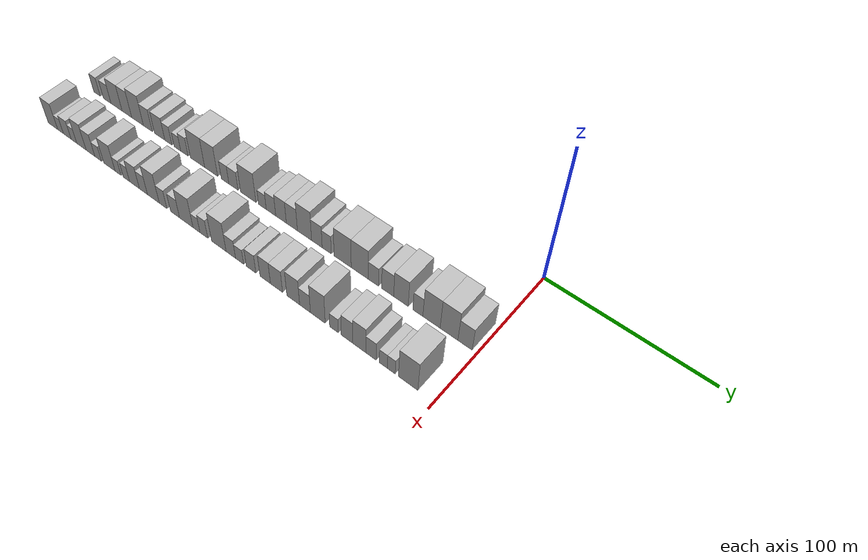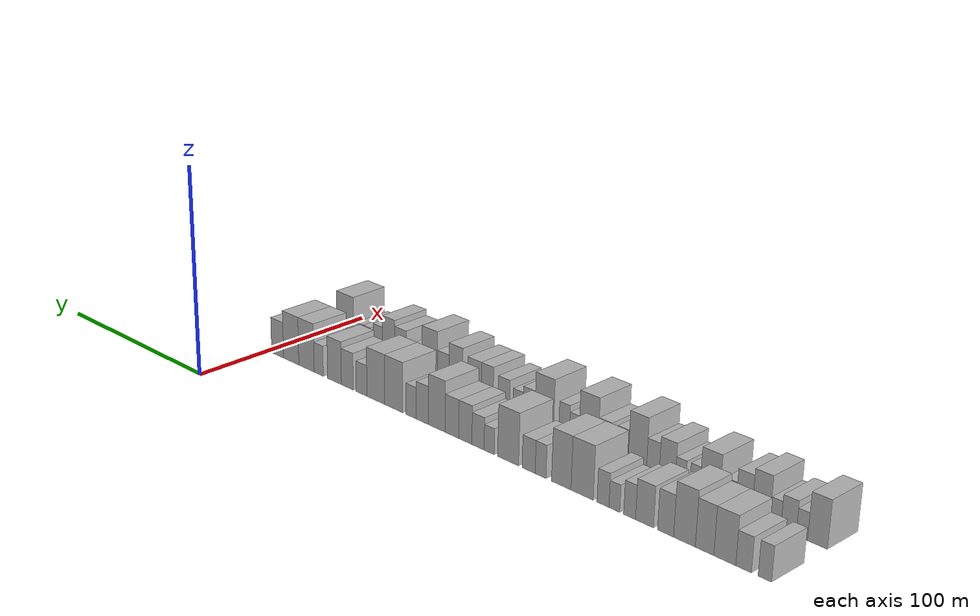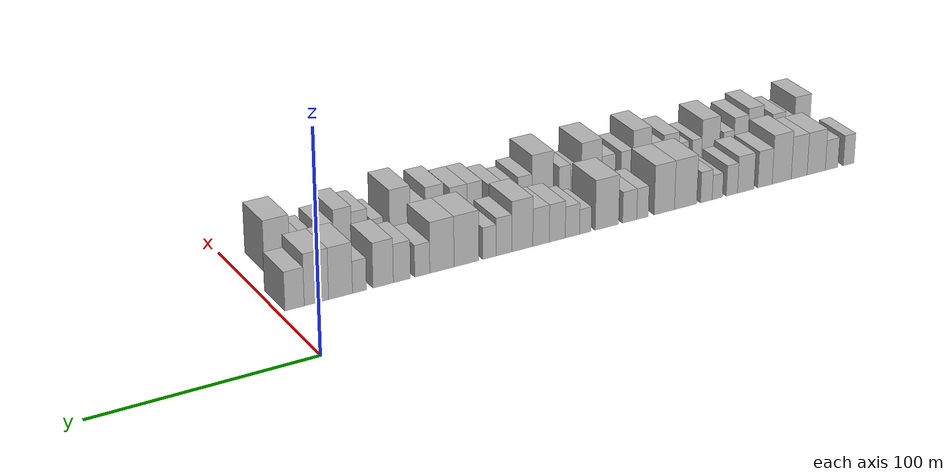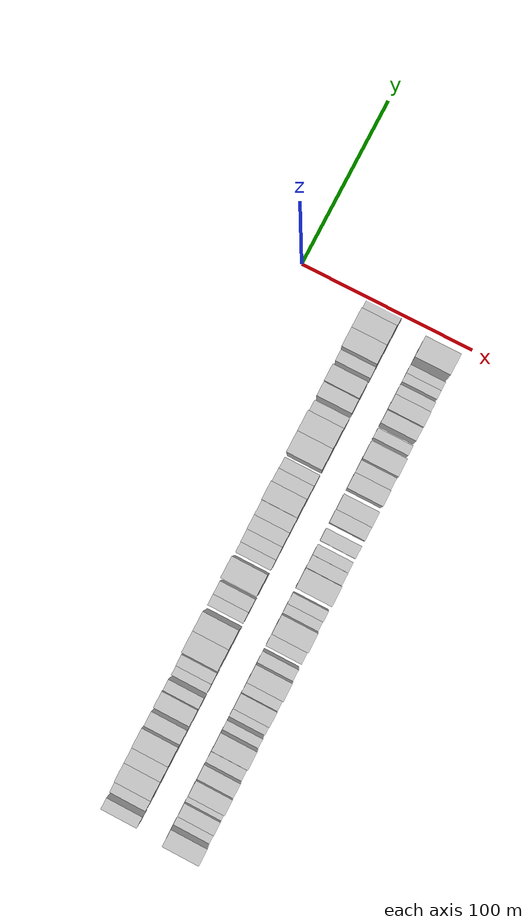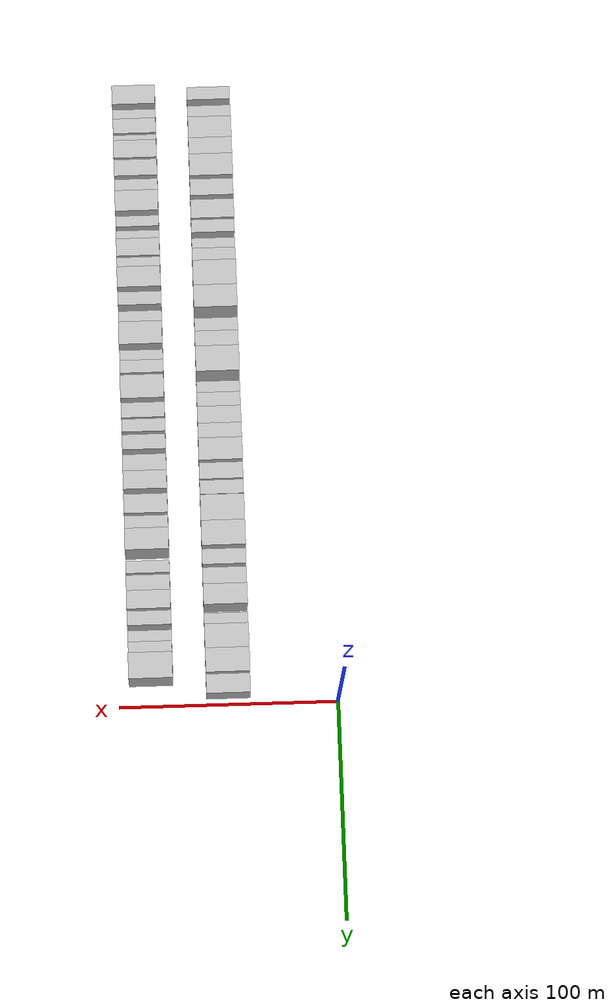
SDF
<sdf version="1.6">
 <world name="default">
  <model name="building_1">
   <static>1</static>
   <pose>50.0000 -286.9867 0 0.000000 0.000000 0.000000</pose>
   <link name="link">
    <pose>0 0 7.50 0 0 0</pose>
    <collision name="collision"><geometry><box><size>20.0000 6.0265 15.0000</size></box></geometry></collision>
    <visual name="visual">
     <cast_shadows>0</cast_shadows>
     <geometry><box><size>20.0000 6.0265 15.0000</size></box></geometry>
     <material>
      <script>
       <uri>model://HANNAS_wall/materials/scripts</uri>
       <uri>model://HANNAS_wall/materials/textures</uri>
       <name>vrc/HANNAS_wall</name>
      </script>
     </material>
    </visual>
   </link>
  </model>
  <model name="building_2">
   <static>1</static>
   <pose>50.0000 -277.4261 0 0.000000 0.000000 0.000000</pose>
   <link name="link">
    <pose>0 0 7.50 0 0 0</pose>
    <collision name="collision"><geometry><box><size>20.0000 7.0948 15.0000</size></box></geometry></collision>
    <visual name="visual">
     <cast_shadows>0</cast_shadows>
     <geometry><box><size>20.0000 7.0948 15.0000</size></box></geometry>
     <material>
      <script>
       <uri>model://HANNAS_wall/materials/scripts</uri>
       <uri>model://HANNAS_wall/materials/textures</uri>
       <name>vrc/HANNAS_wall</name>
      </script>
     </material>
    </visual>
   </link>
  </model>
  <model name="building_3">
   <static>1</static>
   <pose>50.0000 -268.8254 0 0.000000 0.000000 0.000000</pose>
   <link name="link">
    <pose>0 0 10.50 0 0 0</pose>
    <collision name="collision"><geometry><box><size>20.0000 10.1066 21.0000</size></box></geometry></collision>
    <visual name="visual">
     <cast_shadows>0</cast_shadows>
     <geometry><box><size>20.0000 10.1066 21.0000</size></box></geometry>
     <material>
      <script>
       <uri>model://HANNAS_wall/materials/scripts</uri>
       <uri>model://HANNAS_wall/materials/textures</uri>
       <name>vrc/HANNAS_wall</name>
      </script>
     </material>
    </visual>
   </link>
  </model>
  <model name="building_4">
   <static>1</static>
   <pose>50.0000 -259.3988 0 0.000000 0.000000 0.000000</pose>
   <link name="link">
    <pose>0 0 10.50 0 0 0</pose>
    <collision name="collision"><geometry><box><size>20.0000 8.7465 21.0000</size></box></geometry></collision>
    <visual name="visual">
     <cast_shadows>0</cast_shadows>
     <geometry><box><size>20.0000 8.7465 21.0000</size></box></geometry>
     <material>
      <script>
       <uri>model://HANNAS_wall/materials/scripts</uri>
       <uri>model://HANNAS_wall/materials/textures</uri>
       <name>vrc/HANNAS_wall</name>
      </script>
     </material>
    </visual>
   </link>
  </model>
  <model name="building_5">
   <static>1</static>
   <pose>50.0000 -249.8142 0 0.000000 0.000000 0.000000</pose>
   <link name="link">
    <pose>0 0 12.00 0 0 0</pose>
    <collision name="collision"><geometry><box><size>20.0000 10.4228 24.0000</size></box></geometry></collision>
    <visual name="visual">
     <cast_shadows>0</cast_shadows>
     <geometry><box><size>20.0000 10.4228 24.0000</size></box></geometry>
     <material>
      <script>
       <uri>model://HANNAS_wall/materials/scripts</uri>
       <uri>model://HANNAS_wall/materials/textures</uri>
       <name>vrc/HANNAS_wall</name>
      </script>
     </material>
    </visual>
   </link>
  </model>
  <model name="building_6">
   <static>1</static>
   <pose>50.0000 -240.6786 0 0.000000 0.000000 0.000000</pose>
   <link name="link">
    <pose>0 0 9.00 0 0 0</pose>
    <collision name="collision"><geometry><box><size>20.0000 7.8482 18.0000</size></box></geometry></collision>
    <visual name="visual">
     <cast_shadows>0</cast_shadows>
     <geometry><box><size>20.0000 7.8482 18.0000</size></box></geometry>
     <material>
      <script>
       <uri>model://HANNAS_wall/materials/scripts</uri>
       <uri>model://HANNAS_wall/materials/textures</uri>
       <name>vrc/HANNAS_wall</name>
      </script>
     </material>
    </visual>
   </link>
  </model>
  <model name="building_7">
   <static>1</static>
   <pose>50.0000 -230.2864 0 0.000000 0.000000 0.000000</pose>
   <link name="link">
    <pose>0 0 9.00 0 0 0</pose>
    <collision name="collision"><geometry><box><size>20.0000 8.9361 18.0000</size></box></geometry></collision>
    <visual name="visual">
     <cast_shadows>0</cast_shadows>
     <geometry><box><size>20.0000 8.9361 18.0000</size></box></geometry>
     <material>
      <script>
       <uri>model://HANNAS_wall/materials/scripts</uri>
       <uri>model://HANNAS_wall/materials/textures</uri>
       <name>vrc/HANNAS_wall</name>
      </script>
     </material>
    </visual>
   </link>
  </model>
  <model name="building_8">
   <static>1</static>
   <pose>50.0000 -222.8066 0 0.000000 0.000000 0.000000</pose>
   <link name="link">
    <pose>0 0 7.50 0 0 0</pose>
    <collision name="collision"><geometry><box><size>20.0000 6.0235 15.0000</size></box></geometry></collision>
    <visual name="visual">
     <cast_shadows>0</cast_shadows>
     <geometry><box><size>20.0000 6.0235 15.0000</size></box></geometry>
     <material>
      <script>
       <uri>model://HANNAS_wall/materials/scripts</uri>
       <uri>model://HANNAS_wall/materials/textures</uri>
       <name>vrc/HANNAS_wall</name>
      </script>
     </material>
    </visual>
   </link>
  </model>
  <model name="building_9">
   <static>1</static>
   <pose>50.0000 -215.0221 0 0.000000 0.000000 0.000000</pose>
   <link name="link">
    <pose>0 0 6.00 0 0 0</pose>
    <collision name="collision"><geometry><box><size>20.0000 5.5455 12.0000</size></box></geometry></collision>
    <visual name="visual">
     <cast_shadows>0</cast_shadows>
     <geometry><box><size>20.0000 5.5455 12.0000</size></box></geometry>
     <material>
      <script>
       <uri>model://HANNAS_wall/materials/scripts</uri>
       <uri>model://HANNAS_wall/materials/textures</uri>
       <name>vrc/HANNAS_wall</name>
      </script>
     </material>
    </visual>
   </link>
  </model>
  <model name="building_10">
   <static>1</static>
   <pose>50.0000 -209.1622 0 0.000000 0.000000 0.000000</pose>
   <link name="link">
    <pose>0 0 7.50 0 0 0</pose>
    <collision name="collision"><geometry><box><size>20.0000 6.1743 15.0000</size></box></geometry></collision>
    <visual name="visual">
     <cast_shadows>0</cast_shadows>
     <geometry><box><size>20.0000 6.1743 15.0000</size></box></geometry>
     <material>
      <script>
       <uri>model://HANNAS_wall/materials/scripts</uri>
       <uri>model://HANNAS_wall/materials/textures</uri>
       <name>vrc/HANNAS_wall</name>
      </script>
     </material>
    </visual>
   </link>
  </model>
  <model name="building_11">
   <static>1</static>
   <pose>50.0000 -198.1938 0 0.000000 0.000000 0.000000</pose>
   <link name="link">
    <pose>0 0 12.00 0 0 0</pose>
    <collision name="collision"><geometry><box><size>20.0000 11.7625 24.0000</size></box></geometry></collision>
    <visual name="visual">
     <cast_shadows>0</cast_shadows>
     <geometry><box><size>20.0000 11.7625 24.0000</size></box></geometry>
     <material>
      <script>
       <uri>model://HANNAS_wall/materials/scripts</uri>
       <uri>model://HANNAS_wall/materials/textures</uri>
       <name>vrc/HANNAS_wall</name>
      </script>
     </material>
    </visual>
   </link>
  </model>
  <model name="building_12">
   <static>1</static>
   <pose>50.0000 -187.0191 0 0.000000 0.000000 0.000000</pose>
   <link name="link">
    <pose>0 0 12.00 0 0 0</pose>
    <collision name="collision"><geometry><box><size>20.0000 10.5870 24.0000</size></box></geometry></collision>
    <visual name="visual">
     <cast_shadows>0</cast_shadows>
     <geometry><box><size>20.0000 10.5870 24.0000</size></box></geometry>
     <material>
      <script>
       <uri>model://HANNAS_wall/materials/scripts</uri>
       <uri>model://HANNAS_wall/materials/textures</uri>
       <name>vrc/HANNAS_wall</name>
      </script>
     </material>
    </visual>
   </link>
  </model>
  <model name="building_13">
   <static>1</static>
   <pose>50.0000 -175.7036 0 0.000000 0.000000 0.000000</pose>
   <link name="link">
    <pose>0 0 7.50 0 0 0</pose>
    <collision name="collision"><geometry><box><size>20.0000 6.0440 15.0000</size></box></geometry></collision>
    <visual name="visual">
     <cast_shadows>0</cast_shadows>
     <geometry><box><size>20.0000 6.0440 15.0000</size></box></geometry>
     <material>
      <script>
       <uri>model://HANNAS_wall/materials/scripts</uri>
       <uri>model://HANNAS_wall/materials/textures</uri>
       <name>vrc/HANNAS_wall</name>
      </script>
     </material>
    </visual>
   </link>
  </model>
  <model name="building_14">
   <static>1</static>
   <pose>50.0000 -169.0348 0 0.000000 0.000000 0.000000</pose>
   <link name="link">
    <pose>0 0 7.50 0 0 0</pose>
    <collision name="collision"><geometry><box><size>20.0000 7.2937 15.0000</size></box></geometry></collision>
    <visual name="visual">
     <cast_shadows>0</cast_shadows>
     <geometry><box><size>20.0000 7.2937 15.0000</size></box></geometry>
     <material>
      <script>
       <uri>model://HANNAS_wall/materials/scripts</uri>
       <uri>model://HANNAS_wall/materials/textures</uri>
       <name>vrc/HANNAS_wall</name>
      </script>
     </material>
    </visual>
   </link>
  </model>
  <model name="building_15">
   <static>1</static>
   <pose>50.0000 -157.3991 0 0.000000 0.000000 0.000000</pose>
   <link name="link">
    <pose>0 0 12.00 0 0 0</pose>
    <collision name="collision"><geometry><box><size>20.0000 11.9776 24.0000</size></box></geometry></collision>
    <visual name="visual">
     <cast_shadows>0</cast_shadows>
     <geometry><box><size>20.0000 11.9776 24.0000</size></box></geometry>
     <material>
      <script>
       <uri>model://HANNAS_wall/materials/scripts</uri>
       <uri>model://HANNAS_wall/materials/textures</uri>
       <name>vrc/HANNAS_wall</name>
      </script>
     </material>
    </visual>
   </link>
  </model>
  <model name="building_16">
   <static>1</static>
   <pose>50.0000 -146.4578 0 0.000000 0.000000 0.000000</pose>
   <link name="link">
    <pose>0 0 6.00 0 0 0</pose>
    <collision name="collision"><geometry><box><size>20.0000 5.9051 12.0000</size></box></geometry></collision>
    <visual name="visual">
     <cast_shadows>0</cast_shadows>
     <geometry><box><size>20.0000 5.9051 12.0000</size></box></geometry>
     <material>
      <script>
       <uri>model://HANNAS_wall/materials/scripts</uri>
       <uri>model://HANNAS_wall/materials/textures</uri>
       <name>vrc/HANNAS_wall</name>
      </script>
     </material>
    </visual>
   </link>
  </model>
  <model name="building_17">
   <static>1</static>
   <pose>50.0000 -139.8941 0 0.000000 0.000000 0.000000</pose>
   <link name="link">
    <pose>0 0 7.50 0 0 0</pose>
    <collision name="collision"><geometry><box><size>20.0000 7.2222 15.0000</size></box></geometry></collision>
    <visual name="visual">
     <cast_shadows>0</cast_shadows>
     <geometry><box><size>20.0000 7.2222 15.0000</size></box></geometry>
     <material>
      <script>
       <uri>model://HANNAS_wall/materials/scripts</uri>
       <uri>model://HANNAS_wall/materials/textures</uri>
       <name>vrc/HANNAS_wall</name>
      </script>
     </material>
    </visual>
   </link>
  </model>
  <model name="building_18">
   <static>1</static>
   <pose>50.0000 -132.3141 0 0.000000 0.000000 0.000000</pose>
   <link name="link">
    <pose>0 0 9.00 0 0 0</pose>
    <collision name="collision"><geometry><box><size>20.0000 7.9379 18.0000</size></box></geometry></collision>
    <visual name="visual">
     <cast_shadows>0</cast_shadows>
     <geometry><box><size>20.0000 7.9379 18.0000</size></box></geometry>
     <material>
      <script>
       <uri>model://HANNAS_wall/materials/scripts</uri>
       <uri>model://HANNAS_wall/materials/textures</uri>
       <name>vrc/HANNAS_wall</name>
      </script>
     </material>
    </visual>
   </link>
  </model>
  <model name="building_19">
   <static>1</static>
   <pose>50.0000 -124.2348 0 0.000000 0.000000 0.000000</pose>
   <link name="link">
    <pose>0 0 9.00 0 0 0</pose>
    <collision name="collision"><geometry><box><size>20.0000 8.2207 18.0000</size></box></geometry></collision>
    <visual name="visual">
     <cast_shadows>0</cast_shadows>
     <geometry><box><size>20.0000 8.2207 18.0000</size></box></geometry>
     <material>
      <script>
       <uri>model://HANNAS_wall/materials/scripts</uri>
       <uri>model://HANNAS_wall/materials/textures</uri>
       <name>vrc/HANNAS_wall</name>
      </script>
     </material>
    </visual>
   </link>
  </model>
  <model name="building_20">
   <static>1</static>
   <pose>50.0000 -114.9453 0 0.000000 0.000000 0.000000</pose>
   <link name="link">
    <pose>0 0 12.00 0 0 0</pose>
    <collision name="collision"><geometry><box><size>20.0000 10.3582 24.0000</size></box></geometry></collision>
    <visual name="visual">
     <cast_shadows>0</cast_shadows>
     <geometry><box><size>20.0000 10.3582 24.0000</size></box></geometry>
     <material>
      <script>
       <uri>model://HANNAS_wall/materials/scripts</uri>
       <uri>model://HANNAS_wall/materials/textures</uri>
       <name>vrc/HANNAS_wall</name>
      </script>
     </material>
    </visual>
   </link>
  </model>
  <model name="building_21">
   <static>1</static>
   <pose>50.0000 -105.9555 0 0.000000 0.000000 0.000000</pose>
   <link name="link">
    <pose>0 0 9.00 0 0 0</pose>
    <collision name="collision"><geometry><box><size>20.0000 7.6214 18.0000</size></box></geometry></collision>
    <visual name="visual">
     <cast_shadows>0</cast_shadows>
     <geometry><box><size>20.0000 7.6214 18.0000</size></box></geometry>
     <material>
      <script>
       <uri>model://HANNAS_wall/materials/scripts</uri>
       <uri>model://HANNAS_wall/materials/textures</uri>
       <name>vrc/HANNAS_wall</name>
      </script>
     </material>
    </visual>
   </link>
  </model>
  <model name="building_22">
   <static>1</static>
   <pose>50.0000 -98.8913 0 0.000000 0.000000 0.000000</pose>
   <link name="link">
    <pose>0 0 7.50 0 0 0</pose>
    <collision name="collision"><geometry><box><size>20.0000 6.5070 15.0000</size></box></geometry></collision>
    <visual name="visual">
     <cast_shadows>0</cast_shadows>
     <geometry><box><size>20.0000 6.5070 15.0000</size></box></geometry>
     <material>
      <script>
       <uri>model://HANNAS_wall/materials/scripts</uri>
       <uri>model://HANNAS_wall/materials/textures</uri>
       <name>vrc/HANNAS_wall</name>
      </script>
     </material>
    </visual>
   </link>
  </model>
  <model name="building_23">
   <static>1</static>
   <pose>50.0000 -87.6615 0 0.000000 0.000000 0.000000</pose>
   <link name="link">
    <pose>0 0 12.00 0 0 0</pose>
    <collision name="collision"><geometry><box><size>20.0000 11.9526 24.0000</size></box></geometry></collision>
    <visual name="visual">
     <cast_shadows>0</cast_shadows>
     <geometry><box><size>20.0000 11.9526 24.0000</size></box></geometry>
     <material>
      <script>
       <uri>model://HANNAS_wall/materials/scripts</uri>
       <uri>model://HANNAS_wall/materials/textures</uri>
       <name>vrc/HANNAS_wall</name>
      </script>
     </material>
    </visual>
   </link>
  </model>
  <model name="building_24">
   <static>1</static>
   <pose>50.0000 -75.9016 0 0.000000 0.000000 0.000000</pose>
   <link name="link">
    <pose>0 0 12.00 0 0 0</pose>
    <collision name="collision"><geometry><box><size>20.0000 11.5673 24.0000</size></box></geometry></collision>
    <visual name="visual">
     <cast_shadows>0</cast_shadows>
     <geometry><box><size>20.0000 11.5673 24.0000</size></box></geometry>
     <material>
      <script>
       <uri>model://HANNAS_wall/materials/scripts</uri>
       <uri>model://HANNAS_wall/materials/textures</uri>
       <name>vrc/HANNAS_wall</name>
      </script>
     </material>
    </visual>
   </link>
  </model>
  <model name="building_25">
   <static>1</static>
   <pose>50.0000 -66.5488 0 0.000000 0.000000 0.000000</pose>
   <link name="link">
    <pose>0 0 7.50 0 0 0</pose>
    <collision name="collision"><geometry><box><size>20.0000 7.1383 15.0000</size></box></geometry></collision>
    <visual name="visual">
     <cast_shadows>0</cast_shadows>
     <geometry><box><size>20.0000 7.1383 15.0000</size></box></geometry>
     <material>
      <script>
       <uri>model://HANNAS_wall/materials/scripts</uri>
       <uri>model://HANNAS_wall/materials/textures</uri>
       <name>vrc/HANNAS_wall</name>
      </script>
     </material>
    </visual>
   </link>
  </model>
  <model name="building_26">
   <static>1</static>
   <pose>50.0000 -56.9321 0 0.000000 0.000000 0.000000</pose>
   <link name="link">
    <pose>0 0 9.00 0 0 0</pose>
    <collision name="collision"><geometry><box><size>20.0000 8.0951 18.0000</size></box></geometry></collision>
    <visual name="visual">
     <cast_shadows>0</cast_shadows>
     <geometry><box><size>20.0000 8.0951 18.0000</size></box></geometry>
     <material>
      <script>
       <uri>model://HANNAS_wall/materials/scripts</uri>
       <uri>model://HANNAS_wall/materials/textures</uri>
       <name>vrc/HANNAS_wall</name>
      </script>
     </material>
    </visual>
   </link>
  </model>
  <model name="building_27">
   <static>1</static>
   <pose>50.0000 -48.1220 0 0.000000 0.000000 0.000000</pose>
   <link name="link">
    <pose>0 0 10.50 0 0 0</pose>
    <collision name="collision"><geometry><box><size>20.0000 9.5251 21.0000</size></box></geometry></collision>
    <visual name="visual">
     <cast_shadows>0</cast_shadows>
     <geometry><box><size>20.0000 9.5251 21.0000</size></box></geometry>
     <material>
      <script>
       <uri>model://HANNAS_wall/materials/scripts</uri>
       <uri>model://HANNAS_wall/materials/textures</uri>
       <name>vrc/HANNAS_wall</name>
      </script>
     </material>
    </visual>
   </link>
  </model>
  <model name="building_28">
   <static>1</static>
   <pose>50.0000 -37.1234 0 0.000000 0.000000 0.000000</pose>
   <link name="link">
    <pose>0 0 7.50 0 0 0</pose>
    <collision name="collision"><geometry><box><size>20.0000 6.4721 15.0000</size></box></geometry></collision>
    <visual name="visual">
     <cast_shadows>0</cast_shadows>
     <geometry><box><size>20.0000 6.4721 15.0000</size></box></geometry>
     <material>
      <script>
       <uri>model://HANNAS_wall/materials/scripts</uri>
       <uri>model://HANNAS_wall/materials/textures</uri>
       <name>vrc/HANNAS_wall</name>
      </script>
     </material>
    </visual>
   </link>
  </model>
  <model name="building_29">
   <static>1</static>
   <pose>50.0000 -28.4028 0 0.000000 0.000000 0.000000</pose>
   <link name="link">
    <pose>0 0 12.00 0 0 0</pose>
    <collision name="collision"><geometry><box><size>20.0000 10.9692 24.0000</size></box></geometry></collision>
    <visual name="visual">
     <cast_shadows>0</cast_shadows>
     <geometry><box><size>20.0000 10.9692 24.0000</size></box></geometry>
     <material>
      <script>
       <uri>model://HANNAS_wall/materials/scripts</uri>
       <uri>model://HANNAS_wall/materials/textures</uri>
       <name>vrc/HANNAS_wall</name>
      </script>
     </material>
    </visual>
   </link>
  </model>
  <model name="building_30">
   <static>1</static>
   <pose>50.0000 -17.3656 0 0.000000 0.000000 0.000000</pose>
   <link name="link">
    <pose>0 0 12.00 0 0 0</pose>
    <collision name="collision"><geometry><box><size>20.0000 11.1053 24.0000</size></box></geometry></collision>
    <visual name="visual">
     <cast_shadows>0</cast_shadows>
     <geometry><box><size>20.0000 11.1053 24.0000</size></box></geometry>
     <material>
      <script>
       <uri>model://HANNAS_wall/materials/scripts</uri>
       <uri>model://HANNAS_wall/materials/textures</uri>
       <name>vrc/HANNAS_wall</name>
      </script>
     </material>
    </visual>
   </link>
  </model>
  <model name="building_31">
   <static>1</static>
   <pose>50.0000 -7.4308 0 0.000000 0.000000 0.000000</pose>
   <link name="link">
    <pose>0 0 9.00 0 0 0</pose>
    <collision name="collision"><geometry><box><size>20.0000 8.7644 18.0000</size></box></geometry></collision>
    <visual name="visual">
     <cast_shadows>0</cast_shadows>
     <geometry><box><size>20.0000 8.7644 18.0000</size></box></geometry>
     <material>
      <script>
       <uri>model://HANNAS_wall/materials/scripts</uri>
       <uri>model://HANNAS_wall/materials/textures</uri>
       <name>vrc/HANNAS_wall</name>
      </script>
     </material>
    </visual>
   </link>
  </model>
  <model name="building_63">
   <static>1</static>
   <pose>85.0000 -285.5057 0 0.000000 0.000000 0.000000</pose>
   <link name="link">
    <pose>0 0 10.50 0 0 0</pose>
    <collision name="collision"><geometry><box><size>20.0000 8.9887 21.0000</size></box></geometry></collision>
    <visual name="visual">
     <cast_shadows>0</cast_shadows>
     <geometry><box><size>20.0000 8.9887 21.0000</size></box></geometry>
     <material>
      <script>
       <uri>model://HANNAS_wall/materials/scripts</uri>
       <uri>model://HANNAS_wall/materials/textures</uri>
       <name>vrc/HANNAS_wall</name>
      </script>
     </material>
    </visual>
   </link>
  </model>
  <model name="building_64">
   <static>1</static>
   <pose>85.0000 -278.4159 0 0.000000 0.000000 0.000000</pose>
   <link name="link">
    <pose>0 0 6.00 0 0 0</pose>
    <collision name="collision"><geometry><box><size>20.0000 5.1909 12.0000</size></box></geometry></collision>
    <visual name="visual">
     <cast_shadows>0</cast_shadows>
     <geometry><box><size>20.0000 5.1909 12.0000</size></box></geometry>
     <material>
      <script>
       <uri>model://HANNAS_wall/materials/scripts</uri>
       <uri>model://HANNAS_wall/materials/textures</uri>
       <name>vrc/HANNAS_wall</name>
      </script>
     </material>
    </visual>
   </link>
  </model>
  <model name="building_65">
   <static>1</static>
   <pose>85.0000 -272.2517 0 0.000000 0.000000 0.000000</pose>
   <link name="link">
    <pose>0 0 7.50 0 0 0</pose>
    <collision name="collision"><geometry><box><size>20.0000 7.1376 15.0000</size></box></geometry></collision>
    <visual name="visual">
     <cast_shadows>0</cast_shadows>
     <geometry><box><size>20.0000 7.1376 15.0000</size></box></geometry>
     <material>
      <script>
       <uri>model://HANNAS_wall/materials/scripts</uri>
       <uri>model://HANNAS_wall/materials/textures</uri>
       <name>vrc/HANNAS_wall</name>
      </script>
     </material>
    </visual>
   </link>
  </model>
  <model name="building_66">
   <static>1</static>
   <pose>85.0000 -266.1053 0 0.000000 0.000000 0.000000</pose>
   <link name="link">
    <pose>0 0 6.00 0 0 0</pose>
    <collision name="collision"><geometry><box><size>20.0000 5.1553 12.0000</size></box></geometry></collision>
    <visual name="visual">
     <cast_shadows>0</cast_shadows>
     <geometry><box><size>20.0000 5.1553 12.0000</size></box></geometry>
     <material>
      <script>
       <uri>model://HANNAS_wall/materials/scripts</uri>
       <uri>model://HANNAS_wall/materials/textures</uri>
       <name>vrc/HANNAS_wall</name>
      </script>
     </material>
    </visual>
   </link>
  </model>
  <model name="building_67">
   <static>1</static>
   <pose>85.0000 -259.2805 0 0.000000 0.000000 0.000000</pose>
   <link name="link">
    <pose>0 0 10.50 0 0 0</pose>
    <collision name="collision"><geometry><box><size>20.0000 8.4942 21.0000</size></box></geometry></collision>
    <visual name="visual">
     <cast_shadows>0</cast_shadows>
     <geometry><box><size>20.0000 8.4942 21.0000</size></box></geometry>
     <material>
      <script>
       <uri>model://HANNAS_wall/materials/scripts</uri>
       <uri>model://HANNAS_wall/materials/textures</uri>
       <name>vrc/HANNAS_wall</name>
      </script>
     </material>
    </visual>
   </link>
  </model>
  <model name="building_68">
   <static>1</static>
   <pose>85.0000 -251.1591 0 0.000000 0.000000 0.000000</pose>
   <link name="link">
    <pose>0 0 9.00 0 0 0</pose>
    <collision name="collision"><geometry><box><size>20.0000 7.7486 18.0000</size></box></geometry></collision>
    <visual name="visual">
     <cast_shadows>0</cast_shadows>
     <geometry><box><size>20.0000 7.7486 18.0000</size></box></geometry>
     <material>
      <script>
       <uri>model://HANNAS_wall/materials/scripts</uri>
       <uri>model://HANNAS_wall/materials/textures</uri>
       <name>vrc/HANNAS_wall</name>
      </script>
     </material>
    </visual>
   </link>
  </model>
  <model name="building_69">
   <static>1</static>
   <pose>85.0000 -244.3405 0 0.000000 0.000000 0.000000</pose>
   <link name="link">
    <pose>0 0 6.00 0 0 0</pose>
    <collision name="collision"><geometry><box><size>20.0000 5.8887 12.0000</size></box></geometry></collision>
    <visual name="visual">
     <cast_shadows>0</cast_shadows>
     <geometry><box><size>20.0000 5.8887 12.0000</size></box></geometry>
     <material>
      <script>
       <uri>model://HANNAS_wall/materials/scripts</uri>
       <uri>model://HANNAS_wall/materials/textures</uri>
       <name>vrc/HANNAS_wall</name>
      </script>
     </material>
    </visual>
   </link>
  </model>
  <model name="building_70">
   <static>1</static>
   <pose>85.0000 -234.4627 0 0.000000 0.000000 0.000000</pose>
   <link name="link">
    <pose>0 0 10.50 0 0 0</pose>
    <collision name="collision"><geometry><box><size>20.0000 9.8668 21.0000</size></box></geometry></collision>
    <visual name="visual">
     <cast_shadows>0</cast_shadows>
     <geometry><box><size>20.0000 9.8668 21.0000</size></box></geometry>
     <material>
      <script>
       <uri>model://HANNAS_wall/materials/scripts</uri>
       <uri>model://HANNAS_wall/materials/textures</uri>
       <name>vrc/HANNAS_wall</name>
      </script>
     </material>
    </visual>
   </link>
  </model>
  <model name="building_71">
   <static>1</static>
   <pose>85.0000 -226.9836 0 0.000000 0.000000 0.000000</pose>
   <link name="link">
    <pose>0 0 6.00 0 0 0</pose>
    <collision name="collision"><geometry><box><size>20.0000 5.0914 12.0000</size></box></geometry></collision>
    <visual name="visual">
     <cast_shadows>0</cast_shadows>
     <geometry><box><size>20.0000 5.0914 12.0000</size></box></geometry>
     <material>
      <script>
       <uri>model://HANNAS_wall/materials/scripts</uri>
       <uri>model://HANNAS_wall/materials/textures</uri>
       <name>vrc/HANNAS_wall</name>
      </script>
     </material>
    </visual>
   </link>
  </model>
  <model name="building_72">
   <static>1</static>
   <pose>85.0000 -219.7766 0 0.000000 0.000000 0.000000</pose>
   <link name="link">
    <pose>0 0 6.00 0 0 0</pose>
    <collision name="collision"><geometry><box><size>20.0000 5.3225 12.0000</size></box></geometry></collision>
    <visual name="visual">
     <cast_shadows>0</cast_shadows>
     <geometry><box><size>20.0000 5.3225 12.0000</size></box></geometry>
     <material>
      <script>
       <uri>model://HANNAS_wall/materials/scripts</uri>
       <uri>model://HANNAS_wall/materials/textures</uri>
       <name>vrc/HANNAS_wall</name>
      </script>
     </material>
    </visual>
   </link>
  </model>
  <model name="building_73">
   <static>1</static>
   <pose>85.0000 -212.9548 0 0.000000 0.000000 0.000000</pose>
   <link name="link">
    <pose>0 0 9.00 0 0 0</pose>
    <collision name="collision"><geometry><box><size>20.0000 8.3210 18.0000</size></box></geometry></collision>
    <visual name="visual">
     <cast_shadows>0</cast_shadows>
     <geometry><box><size>20.0000 8.3210 18.0000</size></box></geometry>
     <material>
      <script>
       <uri>model://HANNAS_wall/materials/scripts</uri>
       <uri>model://HANNAS_wall/materials/textures</uri>
       <name>vrc/HANNAS_wall</name>
      </script>
     </material>
    </visual>
   </link>
  </model>
  <model name="building_74">
   <static>1</static>
   <pose>85.0000 -205.4370 0 0.000000 0.000000 0.000000</pose>
   <link name="link">
    <pose>0 0 7.50 0 0 0</pose>
    <collision name="collision"><geometry><box><size>20.0000 6.7146 15.0000</size></box></geometry></collision>
    <visual name="visual">
     <cast_shadows>0</cast_shadows>
     <geometry><box><size>20.0000 6.7146 15.0000</size></box></geometry>
     <material>
      <script>
       <uri>model://HANNAS_wall/materials/scripts</uri>
       <uri>model://HANNAS_wall/materials/textures</uri>
       <name>vrc/HANNAS_wall</name>
      </script>
     </material>
    </visual>
   </link>
  </model>
  <model name="building_75">
   <static>1</static>
   <pose>85.0000 -197.2140 0 0.000000 0.000000 0.000000</pose>
   <link name="link">
    <pose>0 0 12.00 0 0 0</pose>
    <collision name="collision"><geometry><box><size>20.0000 9.7315 24.0000</size></box></geometry></collision>
    <visual name="visual">
     <cast_shadows>0</cast_shadows>
     <geometry><box><size>20.0000 9.7315 24.0000</size></box></geometry>
     <material>
      <script>
       <uri>model://HANNAS_wall/materials/scripts</uri>
       <uri>model://HANNAS_wall/materials/textures</uri>
       <name>vrc/HANNAS_wall</name>
      </script>
     </material>
    </visual>
   </link>
  </model>
  <model name="building_76">
   <static>1</static>
   <pose>85.0000 -189.2417 0 0.000000 0.000000 0.000000</pose>
   <link name="link">
    <pose>0 0 7.50 0 0 0</pose>
    <collision name="collision"><geometry><box><size>20.0000 6.2130 15.0000</size></box></geometry></collision>
    <visual name="visual">
     <cast_shadows>0</cast_shadows>
     <geometry><box><size>20.0000 6.2130 15.0000</size></box></geometry>
     <material>
      <script>
       <uri>model://HANNAS_wall/materials/scripts</uri>
       <uri>model://HANNAS_wall/materials/textures</uri>
       <name>vrc/HANNAS_wall</name>
      </script>
     </material>
    </visual>
   </link>
  </model>
  <model name="building_77">
   <static>1</static>
   <pose>85.0000 -179.5406 0 0.000000 0.000000 0.000000</pose>
   <link name="link">
    <pose>0 0 7.50 0 0 0</pose>
    <collision name="collision"><geometry><box><size>20.0000 7.1892 15.0000</size></box></geometry></collision>
    <visual name="visual">
     <cast_shadows>0</cast_shadows>
     <geometry><box><size>20.0000 7.1892 15.0000</size></box></geometry>
     <material>
      <script>
       <uri>model://HANNAS_wall/materials/scripts</uri>
       <uri>model://HANNAS_wall/materials/textures</uri>
       <name>vrc/HANNAS_wall</name>
      </script>
     </material>
    </visual>
   </link>
  </model>
  <model name="building_78">
   <static>1</static>
   <pose>85.0000 -170.6063 0 0.000000 0.000000 0.000000</pose>
   <link name="link">
    <pose>0 0 12.00 0 0 0</pose>
    <collision name="collision"><geometry><box><size>20.0000 10.6794 24.0000</size></box></geometry></collision>
    <visual name="visual">
     <cast_shadows>0</cast_shadows>
     <geometry><box><size>20.0000 10.6794 24.0000</size></box></geometry>
     <material>
      <script>
       <uri>model://HANNAS_wall/materials/scripts</uri>
       <uri>model://HANNAS_wall/materials/textures</uri>
       <name>vrc/HANNAS_wall</name>
      </script>
     </material>
    </visual>
   </link>
  </model>
  <model name="building_79">
   <static>1</static>
   <pose>85.0000 -162.5610 0 0.000000 0.000000 0.000000</pose>
   <link name="link">
    <pose>0 0 6.00 0 0 0</pose>
    <collision name="collision"><geometry><box><size>20.0000 5.4112 12.0000</size></box></geometry></collision>
    <visual name="visual">
     <cast_shadows>0</cast_shadows>
     <geometry><box><size>20.0000 5.4112 12.0000</size></box></geometry>
     <material>
      <script>
       <uri>model://HANNAS_wall/materials/scripts</uri>
       <uri>model://HANNAS_wall/materials/textures</uri>
       <name>vrc/HANNAS_wall</name>
      </script>
     </material>
    </visual>
   </link>
  </model>
  <model name="building_80">
   <static>1</static>
   <pose>85.0000 -156.8165 0 0.000000 0.000000 0.000000</pose>
   <link name="link">
    <pose>0 0 7.50 0 0 0</pose>
    <collision name="collision"><geometry><box><size>20.0000 6.0778 15.0000</size></box></geometry></collision>
    <visual name="visual">
     <cast_shadows>0</cast_shadows>
     <geometry><box><size>20.0000 6.0778 15.0000</size></box></geometry>
     <material>
      <script>
       <uri>model://HANNAS_wall/materials/scripts</uri>
       <uri>model://HANNAS_wall/materials/textures</uri>
       <name>vrc/HANNAS_wall</name>
      </script>
     </material>
    </visual>
   </link>
  </model>
  <model name="building_81">
   <static>1</static>
   <pose>85.0000 -145.2712 0 0.000000 0.000000 0.000000</pose>
   <link name="link">
    <pose>0 0 12.00 0 0 0</pose>
    <collision name="collision"><geometry><box><size>20.0000 11.0128 24.0000</size></box></geometry></collision>
    <visual name="visual">
     <cast_shadows>0</cast_shadows>
     <geometry><box><size>20.0000 11.0128 24.0000</size></box></geometry>
     <material>
      <script>
       <uri>model://HANNAS_wall/materials/scripts</uri>
       <uri>model://HANNAS_wall/materials/textures</uri>
       <name>vrc/HANNAS_wall</name>
      </script>
     </material>
    </visual>
   </link>
  </model>
  <model name="building_82">
   <static>1</static>
   <pose>85.0000 -136.2244 0 0.000000 0.000000 0.000000</pose>
   <link name="link">
    <pose>0 0 7.50 0 0 0</pose>
    <collision name="collision"><geometry><box><size>20.0000 7.0808 15.0000</size></box></geometry></collision>
    <visual name="visual">
     <cast_shadows>0</cast_shadows>
     <geometry><box><size>20.0000 7.0808 15.0000</size></box></geometry>
     <material>
      <script>
       <uri>model://HANNAS_wall/materials/scripts</uri>
       <uri>model://HANNAS_wall/materials/textures</uri>
       <name>vrc/HANNAS_wall</name>
      </script>
     </material>
    </visual>
   </link>
  </model>
  <model name="building_83">
   <static>1</static>
   <pose>85.0000 -129.6910 0 0.000000 0.000000 0.000000</pose>
   <link name="link">
    <pose>0 0 6.00 0 0 0</pose>
    <collision name="collision"><geometry><box><size>20.0000 5.9862 12.0000</size></box></geometry></collision>
    <visual name="visual">
     <cast_shadows>0</cast_shadows>
     <geometry><box><size>20.0000 5.9862 12.0000</size></box></geometry>
     <material>
      <script>
       <uri>model://HANNAS_wall/materials/scripts</uri>
       <uri>model://HANNAS_wall/materials/textures</uri>
       <name>vrc/HANNAS_wall</name>
      </script>
     </material>
    </visual>
   </link>
  </model>
  <model name="building_84">
   <static>1</static>
   <pose>85.0000 -121.1847 0 0.000000 0.000000 0.000000</pose>
   <link name="link">
    <pose>0 0 7.50 0 0 0</pose>
    <collision name="collision"><geometry><box><size>20.0000 7.0262 15.0000</size></box></geometry></collision>
    <visual name="visual">
     <cast_shadows>0</cast_shadows>
     <geometry><box><size>20.0000 7.0262 15.0000</size></box></geometry>
     <material>
      <script>
       <uri>model://HANNAS_wall/materials/scripts</uri>
       <uri>model://HANNAS_wall/materials/textures</uri>
       <name>vrc/HANNAS_wall</name>
      </script>
     </material>
    </visual>
   </link>
  </model>
  <model name="building_85">
   <static>1</static>
   <pose>85.0000 -110.9078 0 0.000000 0.000000 0.000000</pose>
   <link name="link">
    <pose>0 0 9.00 0 0 0</pose>
    <collision name="collision"><geometry><box><size>20.0000 7.5277 18.0000</size></box></geometry></collision>
    <visual name="visual">
     <cast_shadows>0</cast_shadows>
     <geometry><box><size>20.0000 7.5277 18.0000</size></box></geometry>
     <material>
      <script>
       <uri>model://HANNAS_wall/materials/scripts</uri>
       <uri>model://HANNAS_wall/materials/textures</uri>
       <name>vrc/HANNAS_wall</name>
      </script>
     </material>
    </visual>
   </link>
  </model>
  <model name="building_86">
   <static>1</static>
   <pose>85.0000 -102.8354 0 0.000000 0.000000 0.000000</pose>
   <link name="link">
    <pose>0 0 9.00 0 0 0</pose>
    <collision name="collision"><geometry><box><size>20.0000 8.6170 18.0000</size></box></geometry></collision>
    <visual name="visual">
     <cast_shadows>0</cast_shadows>
     <geometry><box><size>20.0000 8.6170 18.0000</size></box></geometry>
     <material>
      <script>
       <uri>model://HANNAS_wall/materials/scripts</uri>
       <uri>model://HANNAS_wall/materials/textures</uri>
       <name>vrc/HANNAS_wall</name>
      </script>
     </material>
    </visual>
   </link>
  </model>
  <model name="building_87">
   <static>1</static>
   <pose>85.0000 -91.0759 0 0.000000 0.000000 0.000000</pose>
   <link name="link">
    <pose>0 0 10.50 0 0 0</pose>
    <collision name="collision"><geometry><box><size>20.0000 8.9021 21.0000</size></box></geometry></collision>
    <visual name="visual">
     <cast_shadows>0</cast_shadows>
     <geometry><box><size>20.0000 8.9021 21.0000</size></box></geometry>
     <material>
      <script>
       <uri>model://HANNAS_wall/materials/scripts</uri>
       <uri>model://HANNAS_wall/materials/textures</uri>
       <name>vrc/HANNAS_wall</name>
      </script>
     </material>
    </visual>
   </link>
  </model>
  <model name="building_88">
   <static>1</static>
   <pose>85.0000 -82.8972 0 0.000000 0.000000 0.000000</pose>
   <link name="link">
    <pose>0 0 7.50 0 0 0</pose>
    <collision name="collision"><geometry><box><size>20.0000 7.4553 15.0000</size></box></geometry></collision>
    <visual name="visual">
     <cast_shadows>0</cast_shadows>
     <geometry><box><size>20.0000 7.4553 15.0000</size></box></geometry>
     <material>
      <script>
       <uri>model://HANNAS_wall/materials/scripts</uri>
       <uri>model://HANNAS_wall/materials/textures</uri>
       <name>vrc/HANNAS_wall</name>
      </script>
     </material>
    </visual>
   </link>
  </model>
  <model name="building_89">
   <static>1</static>
   <pose>85.0000 -74.1538 0 0.000000 0.000000 0.000000</pose>
   <link name="link">
    <pose>0 0 12.00 0 0 0</pose>
    <collision name="collision"><geometry><box><size>20.0000 10.0315 24.0000</size></box></geometry></collision>
    <visual name="visual">
     <cast_shadows>0</cast_shadows>
     <geometry><box><size>20.0000 10.0315 24.0000</size></box></geometry>
     <material>
      <script>
       <uri>model://HANNAS_wall/materials/scripts</uri>
       <uri>model://HANNAS_wall/materials/textures</uri>
       <name>vrc/HANNAS_wall</name>
      </script>
     </material>
    </visual>
   </link>
  </model>
  <model name="building_90">
   <static>1</static>
   <pose>85.0000 -63.2935 0 0.000000 0.000000 0.000000</pose>
   <link name="link">
    <pose>0 0 6.00 0 0 0</pose>
    <collision name="collision"><geometry><box><size>20.0000 5.6891 12.0000</size></box></geometry></collision>
    <visual name="visual">
     <cast_shadows>0</cast_shadows>
     <geometry><box><size>20.0000 5.6891 12.0000</size></box></geometry>
     <material>
      <script>
       <uri>model://HANNAS_wall/materials/scripts</uri>
       <uri>model://HANNAS_wall/materials/textures</uri>
       <name>vrc/HANNAS_wall</name>
      </script>
     </material>
    </visual>
   </link>
  </model>
  <model name="building_91">
   <static>1</static>
   <pose>85.0000 -54.6893 0 0.000000 0.000000 0.000000</pose>
   <link name="link">
    <pose>0 0 9.00 0 0 0</pose>
    <collision name="collision"><geometry><box><size>20.0000 7.5194 18.0000</size></box></geometry></collision>
    <visual name="visual">
     <cast_shadows>0</cast_shadows>
     <geometry><box><size>20.0000 7.5194 18.0000</size></box></geometry>
     <material>
      <script>
       <uri>model://HANNAS_wall/materials/scripts</uri>
       <uri>model://HANNAS_wall/materials/textures</uri>
       <name>vrc/HANNAS_wall</name>
      </script>
     </material>
    </visual>
   </link>
  </model>
  <model name="building_92">
   <static>1</static>
   <pose>85.0000 -46.6586 0 0.000000 0.000000 0.000000</pose>
   <link name="link">
    <pose>0 0 10.50 0 0 0</pose>
    <collision name="collision"><geometry><box><size>20.0000 8.5419 21.0000</size></box></geometry></collision>
    <visual name="visual">
     <cast_shadows>0</cast_shadows>
     <geometry><box><size>20.0000 8.5419 21.0000</size></box></geometry>
     <material>
      <script>
       <uri>model://HANNAS_wall/materials/scripts</uri>
       <uri>model://HANNAS_wall/materials/textures</uri>
       <name>vrc/HANNAS_wall</name>
      </script>
     </material>
    </visual>
   </link>
  </model>
  <model name="building_93">
   <static>1</static>
   <pose>85.0000 -39.0901 0 0.000000 0.000000 0.000000</pose>
   <link name="link">
    <pose>0 0 7.50 0 0 0</pose>
    <collision name="collision"><geometry><box><size>20.0000 6.5951 15.0000</size></box></geometry></collision>
    <visual name="visual">
     <cast_shadows>0</cast_shadows>
     <geometry><box><size>20.0000 6.5951 15.0000</size></box></geometry>
     <material>
      <script>
       <uri>model://HANNAS_wall/materials/scripts</uri>
       <uri>model://HANNAS_wall/materials/textures</uri>
       <name>vrc/HANNAS_wall</name>
      </script>
     </material>
    </visual>
   </link>
  </model>
  <model name="building_94">
   <static>1</static>
   <pose>85.0000 -31.2724 0 0.000000 0.000000 0.000000</pose>
   <link name="link">
    <pose>0 0 6.00 0 0 0</pose>
    <collision name="collision"><geometry><box><size>20.0000 5.0404 12.0000</size></box></geometry></collision>
    <visual name="visual">
     <cast_shadows>0</cast_shadows>
     <geometry><box><size>20.0000 5.0404 12.0000</size></box></geometry>
     <material>
      <script>
       <uri>model://HANNAS_wall/materials/scripts</uri>
       <uri>model://HANNAS_wall/materials/textures</uri>
       <name>vrc/HANNAS_wall</name>
      </script>
     </material>
    </visual>
   </link>
  </model>
  <model name="building_95">
   <static>1</static>
   <pose>85.0000 -26.2950 0 0.000000 0.000000 0.000000</pose>
   <link name="link">
    <pose>0 0 6.00 0 0 0</pose>
    <collision name="collision"><geometry><box><size>20.0000 4.9145 12.0000</size></box></geometry></collision>
    <visual name="visual">
     <cast_shadows>0</cast_shadows>
     <geometry><box><size>20.0000 4.9145 12.0000</size></box></geometry>
     <material>
      <script>
       <uri>model://HANNAS_wall/materials/scripts</uri>
       <uri>model://HANNAS_wall/materials/textures</uri>
       <name>vrc/HANNAS_wall</name>
      </script>
     </material>
    </visual>
   </link>
  </model>
  <model name="building_96">
   <static>1</static>
   <pose>85.0000 -15.8567 0 0.000000 0.000000 0.000000</pose>
   <link name="link">
    <pose>0 0 12.00 0 0 0</pose>
    <collision name="collision"><geometry><box><size>20.0000 11.9622 24.0000</size></box></geometry></collision>
    <visual name="visual">
     <cast_shadows>0</cast_shadows>
     <geometry><box><size>20.0000 11.9622 24.0000</size></box></geometry>
     <material>
      <script>
       <uri>model://HANNAS_wall/materials/scripts</uri>
       <uri>model://HANNAS_wall/materials/textures</uri>
       <name>vrc/HANNAS_wall</name>
      </script>
     </material>
    </visual>
   </link>
  </model>
 </world>
</sdf>
